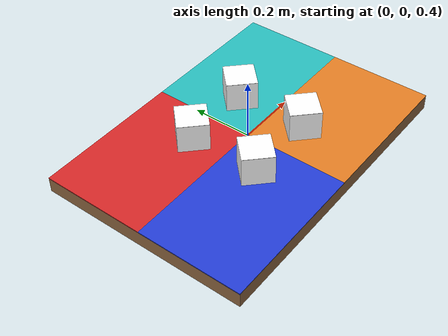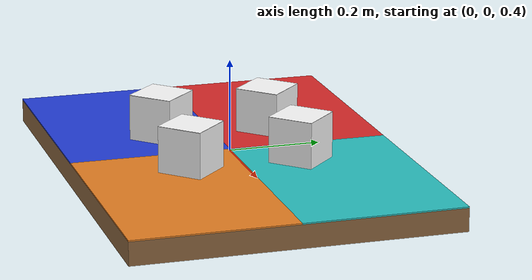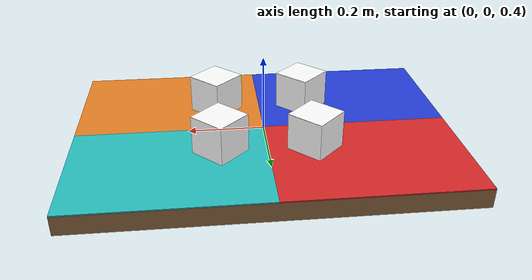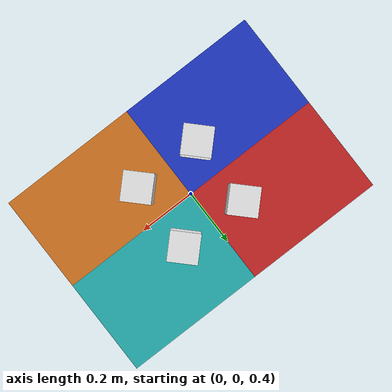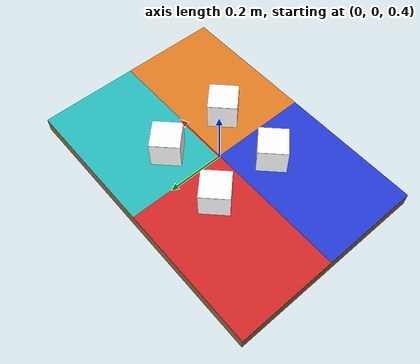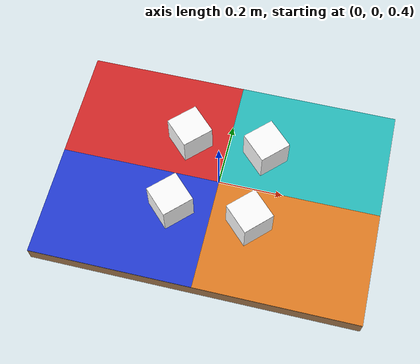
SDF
<?xml version="1.0" ?>
<sdf version="1.9">
  <world name="armando_workbench">
    <gravity>0 0 -9.81</gravity>

    <!-- ===== Plugin di Sistema di Gazebo ===== -->
    <plugin filename="gz-sim-physics-system" name="gz::sim::systems::Physics"/>
    <plugin filename="gz-sim-user-commands-system" name="gz::sim::systems::UserCommands"/>
    <plugin filename="gz-sim-scene-broadcaster-system" name="gz::sim::systems::SceneBroadcaster"/>

    <plugin filename="gz-sim-sensors-system" name="gz::sim::systems::Sensors">
      <render_engine>ogre2</render_engine>
    </plugin>
    <plugin filename="gz-sim-contact-system" name="gz::sim::systems::Contact"/>

    <!-- ===== Impostazioni GUI e Telecamera ===== -->
    <gui fullscreen="0">
      <plugin filename="GzScene3D" name="3D View">
        <gz-gui>
          <title>3D View</title>
          <property type="bool" key="showTitleBar">false</property>
          <property type="string" key="state">docked</property>
        </gz-gui>
        <engine>ogre2</engine>
        <scene>scene</scene>
        <ambient_light>0.4 0.4 0.4</ambient_light>
        <background_color>0.8 0.8 0.8</background_color>
        <camera_pose>1 1 1 0 0.5 -2.3</camera_pose>
        <camera_clip>
          <near>0.01</near>
          <far>100</far>
        </camera_clip>
      </plugin>
    </gui>

    <!-- ===== Illuminazione ===== -->
    <light type="directional" name="sun">
      <cast_shadows>true</cast_shadows>
      <pose>0 0 10 0 0 0</pose>
      <diffuse>0.8 0.8 0.8 1</diffuse>
      <specular>0.2 0.2 0.2 1</specular>
      <attenuation>
        <range>1000</range>
        <constant>0.9</constant>
        <linear>0.01</linear>
        <quadratic>0.001</quadratic>
      </attenuation>
      <direction>-0.5 0.1 -0.9</direction>
    </light>

    <!-- ===== Modelli Statici (Tavolo e separatori) ===== -->
    <model name="workbench">
      <static>true</static>
      <!-- Spostato da 0.45 a 0.0 -->
      <pose>0.0 0.0 0.375 0 0 0</pose>
      <link name="top">
        <collision name="collision">
          <geometry>
            <box>
              <size>1.0 0.7 0.05</size>
            </box>
          </geometry>
        </collision>
        <visual name="visual">
          <geometry>
            <box>
              <size>1.0 0.7 0.05</size>
            </box>
          </geometry>
          <material>
            <ambient>0.45 0.33 0.22 1</ambient>
            <diffuse>0.55 0.4 0.25 1</diffuse>
          </material>
        </visual>
      </link>
    </model>

    <model name="quad_nw_red">
      <static>true</static>
      <!-- Spostato da 0.20 a -0.25 -->
      <pose>-0.25 0.175 0.4015 0 0 0</pose>
      <link name="link">
        <collision name="collision">
          <geometry>
            <box>
              <size>0.50 0.35 0.003</size>
            </box>
          </geometry>
        </collision>
        <visual name="visual">
          <geometry>
            <box>
              <size>0.50 0.35 0.003</size>
            </box>
          </geometry>
          <material>
            <ambient>0.8 0.12 0.12 1</ambient>
            <diffuse>0.85 0.16 0.16 1</diffuse>
          </material>
        </visual>
      </link>
    </model>

    <model name="quad_ne_cyan">
      <static>true</static>
      <!-- Spostato da 0.70 a 0.25 -->
      <pose>0.25 0.175 0.4015 0 0 0</pose>
      <link name="link">
        <collision name="collision">
          <geometry>
            <box>
              <size>0.50 0.35 0.003</size>
            </box>
          </geometry>
        </collision>
        <visual name="visual">
          <geometry>
            <box>
              <size>0.50 0.35 0.003</size>
            </box>
          </geometry>
          <material>
            <ambient>0.12 0.65 0.65 1</ambient>
            <diffuse>0.16 0.75 0.75 1</diffuse>
          </material>
        </visual>
      </link>
    </model>

    <model name="quad_sw_blue">
      <static>true</static>
      <!-- Spostato da 0.20 a -0.25 -->
      <pose>-0.25 -0.175 0.4015 0 0 0</pose>
      <link name="link">
        <collision name="collision">
          <geometry>
            <box>
              <size>0.50 0.35 0.003</size>
            </box>
          </geometry>
        </collision>
        <visual name="visual">
          <geometry>
            <box>
              <size>0.50 0.35 0.003</size>
            </box>
          </geometry>
          <material>
            <ambient>0.10 0.20 0.78 1</ambient>
            <diffuse>0.14 0.24 0.85 1</diffuse>
          </material>
        </visual>
      </link>
    </model>

    <model name="quad_se_orange">
      <static>true</static>
      <!-- Spostato da 0.70 a 0.25 -->
      <pose>0.25 -0.175 0.4015 0 0 0</pose>
      <link name="link">
        <collision name="collision">
          <geometry>
            <box>
              <size>0.50 0.35 0.003</size>
            </box>
          </geometry>
        </collision>
        <visual name="visual">
          <geometry>
            <box>
              <size>0.50 0.35 0.003</size>
            </box>
          </geometry>
          <material>
            <ambient>0.82 0.44 0.10 1</ambient>
            <diffuse>0.90 0.50 0.14 1</diffuse>
          </material>
        </visual>
      </link>
    </model>

    <!-- 4 separatori disposti a croce dal centro verso i bordi del tavolo (Aggiornati) -->

    <!-- OBSTACLE BOX A (Marker ID 0) -->
    <model name="obstacle_box_a">
      <static>false</static>
      <!-- Spostato da 0.2 a -0.25 -->
      <pose>-0.12 -0.12 0.455 0 0 0.785398</pose>
      <link name="link">
        <inertial>
          <mass>0.5</mass>
          <inertia>
            <ixx>0.000767</ixx><iyy>0.000767</iyy><izz>0.000767</izz>
          </inertia>
        </inertial>
        <collision name="collision">
          <geometry><box><size>0.10 0.10 0.10</size></box></geometry>
        </collision>
        <visual name="body_visual">
          <geometry><box><size>0.10 0.10 0.10</size></box></geometry>
          <material>
            <ambient>1 1 1 1</ambient><diffuse>1 1 1 1</diffuse><specular>0.1 0.1 0.1 1</specular>
          </material>
        </visual>
        <visual name="tag_visual">
          <pose>0 0 0.0501 0 0 0</pose>
          <geometry><box><size>0.10 0.10 0.001</size></box></geometry>
          <material>
            <diffuse>1 1 1 1</diffuse>
            <specular>0 0 0 1</specular>
            <pbr>
              <metal>
                <albedo_map>model://aruco_cube_0/materials/textures/aruco_tag_0.png</albedo_map>
              </metal>
            </pbr>
          </material>
        </visual>
      </link>
      <plugin filename="gz-sim-pose-publisher-system" name="gz::sim::systems::PosePublisher">
        <publish_link_pose>true</publish_link_pose>
        <publish_sensor_pose>false</publish_sensor_pose>
        <publish_collision_pose>false</publish_collision_pose>
        <publish_visual_pose>false</publish_visual_pose>
        <publish_nested_model_pose>false</publish_nested_model_pose>
        <use_pose_vector_msg>true</use_pose_vector_msg>
        <update_frequency>10</update_frequency>
      </plugin>
    </model>

    <!-- OBSTACLE BOX B (Marker ID 1) -->
    <model name="obstacle_box_b">
      <static>false</static>
      <!-- Spostato da 0.55 a 0.10 -->
      <pose>0.12 -0.12 0.455 0 0 0.785398</pose>
      <link name="link">
        <inertial>
          <mass>0.4</mass>
          <inertia>
            <ixx>0.000427</ixx><iyy>0.000427</iyy><izz>0.000427</izz>
          </inertia>
        </inertial>
        <collision name="collision">
          <geometry><box><size>0.10 0.10 0.10</size></box></geometry>
        </collision>
        <visual name="body_visual">
          <geometry><box><size>0.10 0.10 0.10</size></box></geometry>
          <material>
            <ambient>1 1 1 1</ambient><diffuse>1 1 1 1</diffuse><specular>0.1 0.1 0.1 1</specular>
          </material>
        </visual>
        <visual name="tag_visual">
          <pose>0 0 0.0501 0 0 0</pose>
          <geometry><box><size>0.10 0.10 0.001</size></box></geometry>
          <material>
            <diffuse>1 1 1 1</diffuse>
            <specular>0 0 0 1</specular>
            <pbr>
              <metal>
                <albedo_map>model://aruco_cube_1/materials/textures/aruco_tag_1.png</albedo_map>
              </metal>
            </pbr>
          </material>
        </visual>
      </link>
      <plugin filename="gz-sim-pose-publisher-system" name="gz::sim::systems::PosePublisher">
        <publish_link_pose>true</publish_link_pose>
        <use_pose_vector_msg>true</use_pose_vector_msg>
        <update_frequency>10</update_frequency>
      </plugin>
    </model>

    <!-- OBSTACLE BOX C (Marker ID 2) -->
    <model name="obstacle_box_c">
      <static>false</static>
      <!-- Spostato da 0.15 a -0.30 -->
      <pose>-0.12 0.12 0.450 0 0 0.785398</pose>
      <link name="link">
        <inertial>
          <mass>0.3</mass>
          <inertia>
            <ixx>0.000245</ixx><iyy>0.000245</iyy><izz>0.000245</izz>
          </inertia>
        </inertial>
        <collision name="collision">
          <geometry><box><size>0.10 0.10 0.10</size></box></geometry>
        </collision>
        <visual name="body_visual">
          <geometry><box><size>0.10 0.10 0.10</size></box></geometry>
          <material>
            <ambient>1 1 1 1</ambient><diffuse>1 1 1 1</diffuse><specular>0.1 0.1 0.1 1</specular>
          </material>
        </visual>
        <visual name="tag_visual">
          <pose>0 0 0.0501 0 0 0</pose>
          <geometry><box><size>0.10 0.10 0.001</size></box></geometry>
          <material>
            <diffuse>1 1 1 1</diffuse>
            <specular>0 0 0 1</specular>
            <pbr>
              <metal>
                <albedo_map>model://aruco_cube_2/materials/textures/aruco_tag_2.png</albedo_map>
              </metal>
            </pbr>
          </material>
        </visual>
      </link>
      <plugin filename="gz-sim-pose-publisher-system" name="gz::sim::systems::PosePublisher">
        <publish_link_pose>true</publish_link_pose>
        <use_pose_vector_msg>true</use_pose_vector_msg>
        <update_frequency>10</update_frequency>
      </plugin>
    </model>

    <!-- OBSTACLE BOX D (Marker ID 3) -->
    <model name="obstacle_box_d">
      <static>false</static>
      <pose>0.12 0.12 0.455 0 0 0.785398</pose>
      <link name="link">
        <inertial>
          <mass>0.3</mass>
          <inertia>
            <ixx>0.000245</ixx><iyy>0.000245</iyy><izz>0.000245</izz>
          </inertia>
        </inertial>
        <collision name="collision">
          <geometry><box><size>0.10 0.10 0.10</size></box></geometry>
        </collision>
        <visual name="body_visual">
          <geometry><box><size>0.10 0.10 0.10</size></box></geometry>
          <material>
            <ambient>1 1 1 1</ambient><diffuse>1 1 1 1</diffuse><specular>0.1 0.1 0.1 1</specular>
          </material>
        </visual>
        <visual name="tag_visual">
          <pose>0 0 0.0501 0 0 0</pose>
          <geometry><box><size>0.10 0.10 0.001</size></box></geometry>
          <material>
            <diffuse>1 1 1 1</diffuse>
            <specular>0 0 0 1</specular>
            <pbr>
              <metal>
                <albedo_map>model://aruco_cube_3/materials/textures/aruco_tag_3.png</albedo_map>
              </metal>
            </pbr>
          </material>
        </visual>
      </link>
      <plugin filename="gz-sim-pose-publisher-system" name="gz::sim::systems::PosePublisher">
        <publish_link_pose>true</publish_link_pose>
        <use_pose_vector_msg>true</use_pose_vector_msg>
        <update_frequency>10</update_frequency>
      </plugin>
    </model>

  </world>
</sdf>
